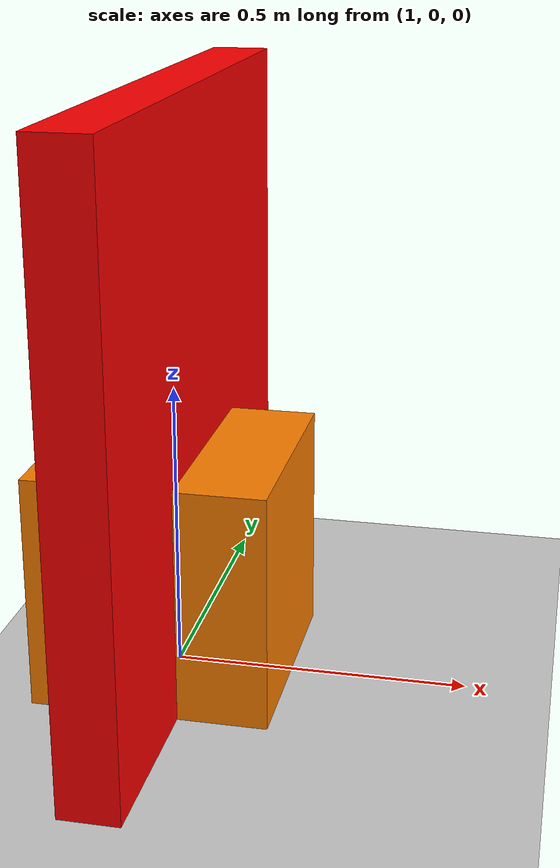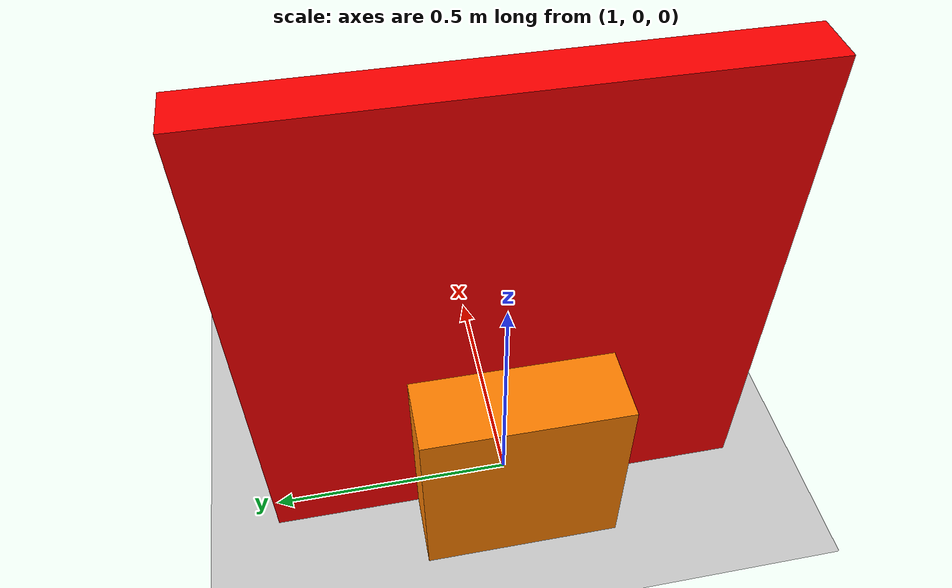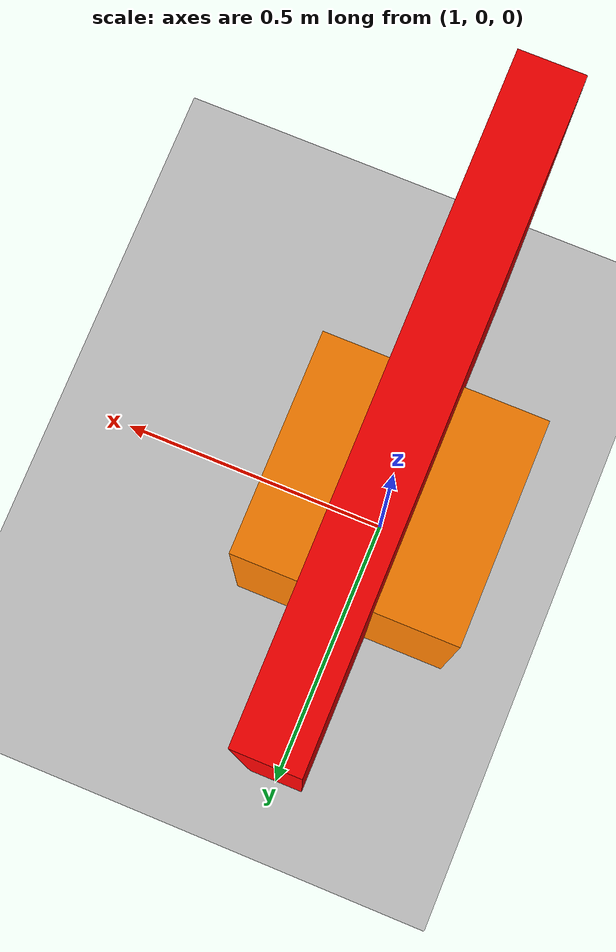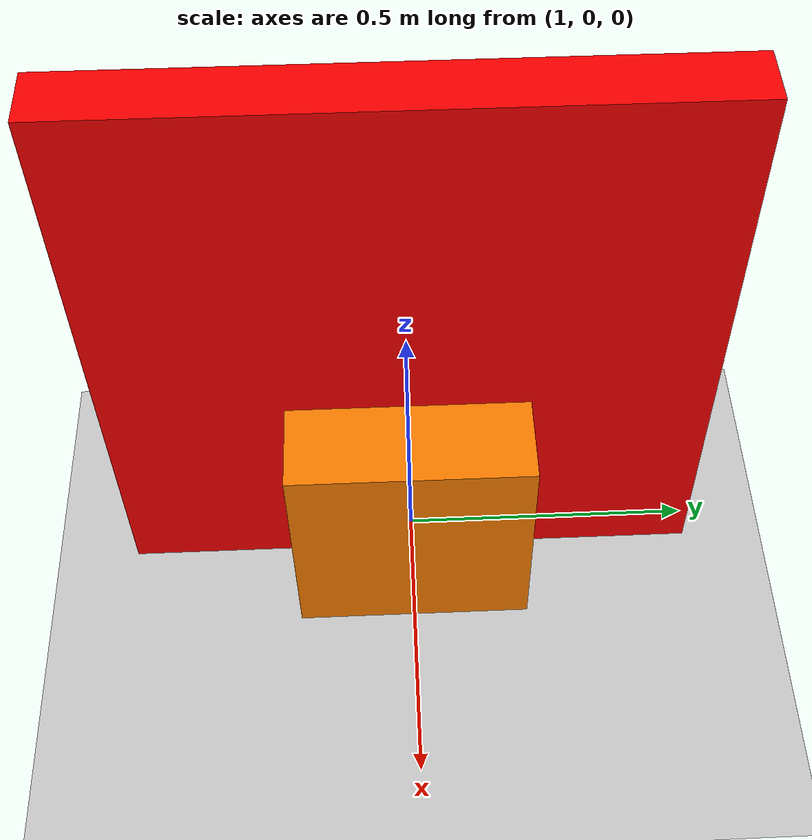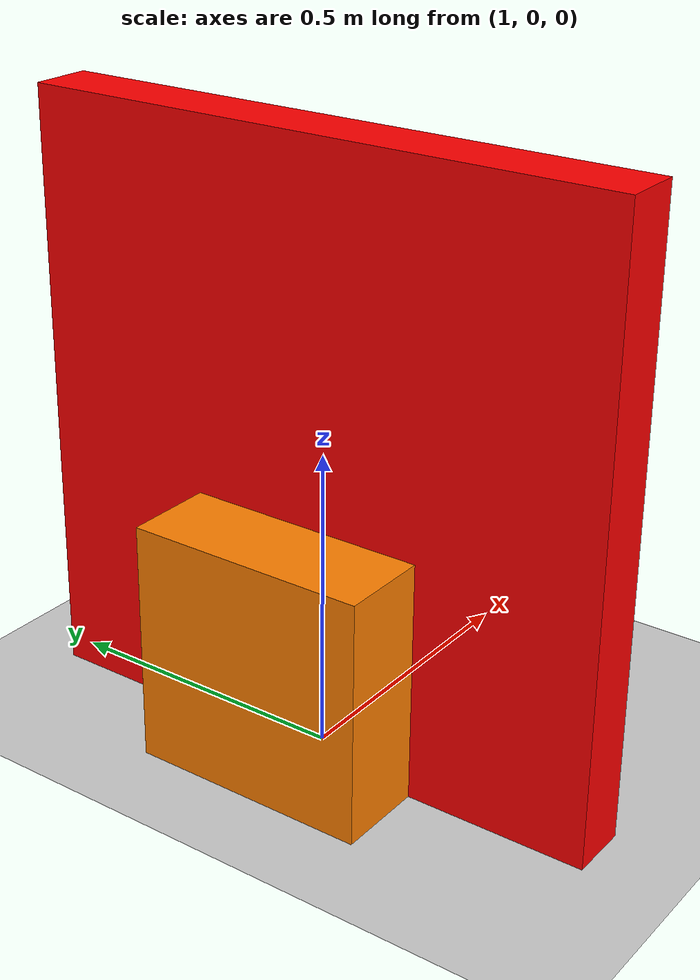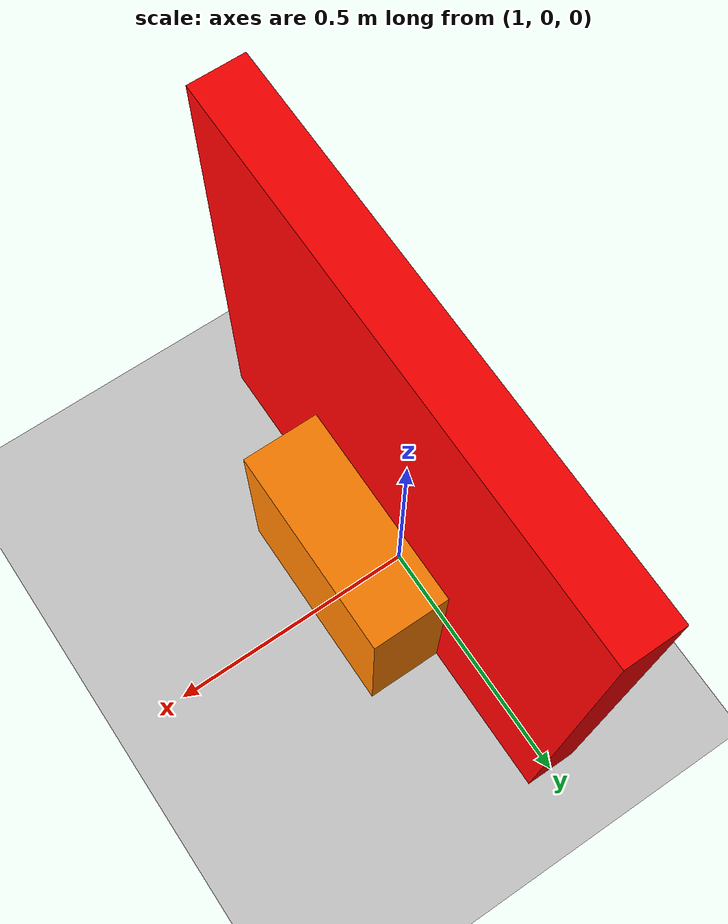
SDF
<?xml version="1.0" ?>
<sdf version="1.6">
  <world name="default">
    <include>
      <uri>model://ground_plane</uri>
    </include>
    <include>
      <uri>model://sun</uri>
    </include>

    <!-- Wall -->
    <model name="wall">
      <pose>1.0 0 0.5 0 0 0</pose>
      <link name="link">
        <collision name="wall_collision">
          <geometry>
            <box><size>0.1 1.0 1.0</size></box>
          </geometry>
        </collision>
        <visual name="wall_visual">
          <geometry>
            <box><size>0.1 1.0 1.0</size></box>
          </geometry>
          <material>
            <ambient>1 0 0 1</ambient>
          </material>
        </visual>
      </link>
    </model>

    <!-- Orange Box -->
    <model name="orange_box">
      <static>true</static>
      <pose>1 0 0.2 0 0 0</pose>
      <link name="link">
        <collision name="orange_box_collision">
          <geometry>
            <box><size>0.4 0.4 0.4</size></box>
          </geometry>
        </collision>
        <visual name="orange_box_visual">
          <geometry>
            <box><size>0.4 0.4 0.4</size></box>
          </geometry>
          <material>
            <ambient>1 0.5 0 1</ambient>
            <diffuse>1 0.5 0 1</diffuse>
          </material>
        </visual>
      </link>
    </model>

  </world>
</sdf>
